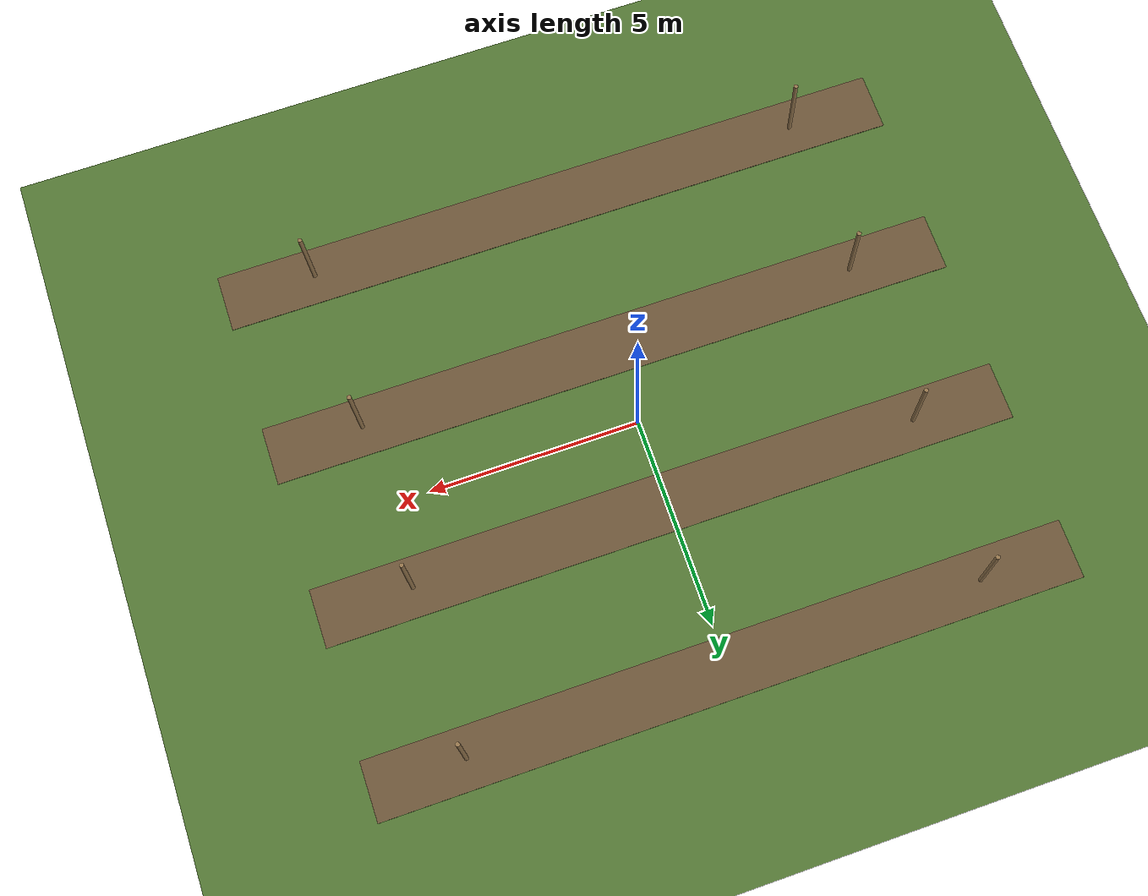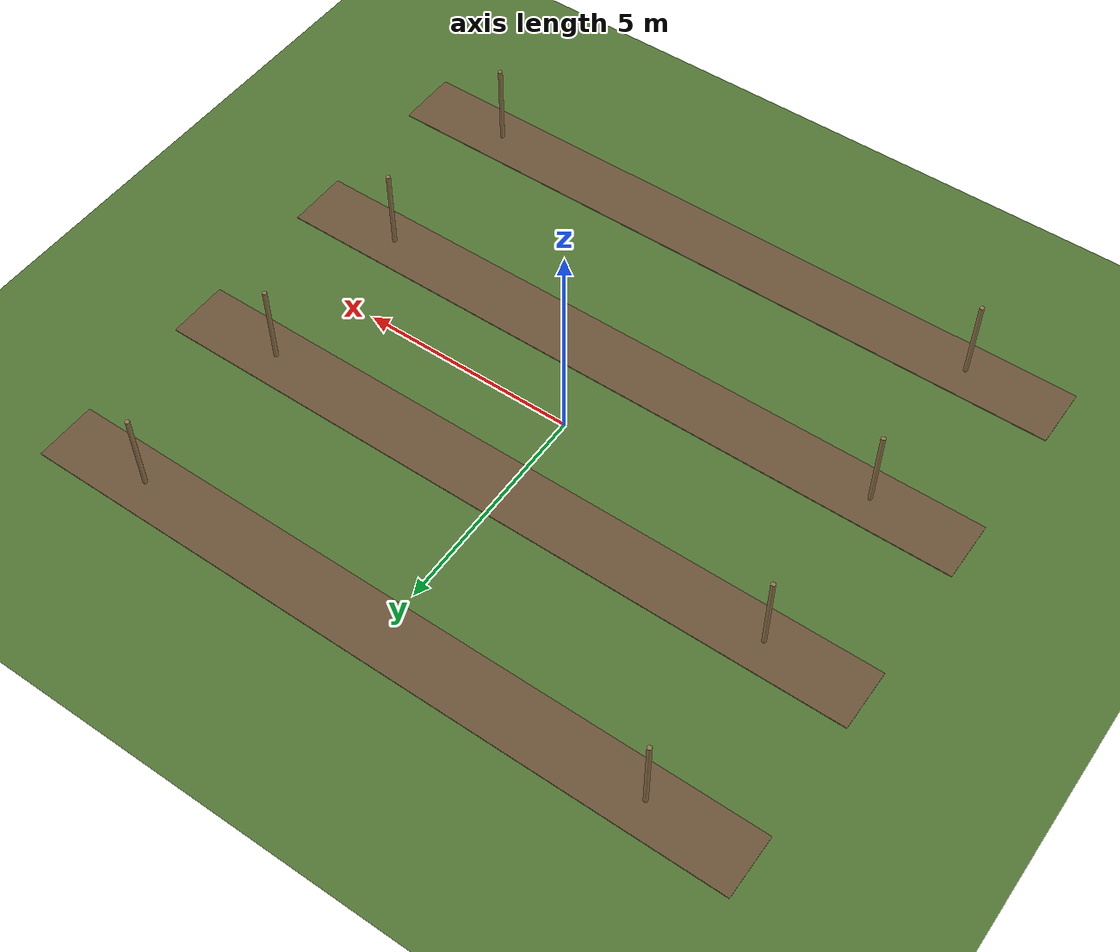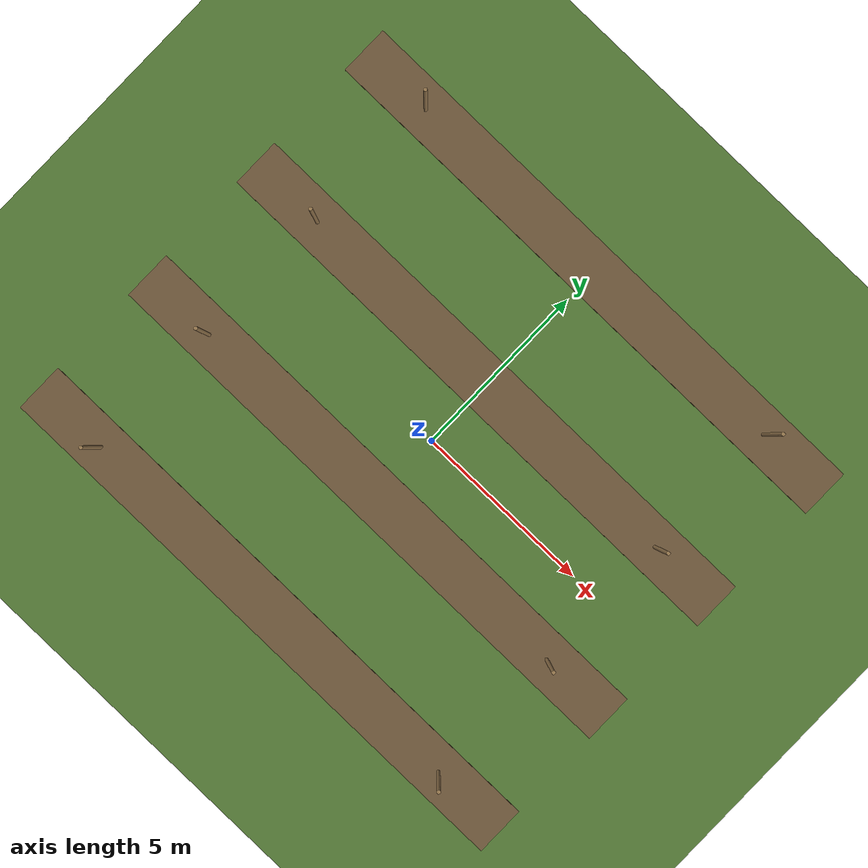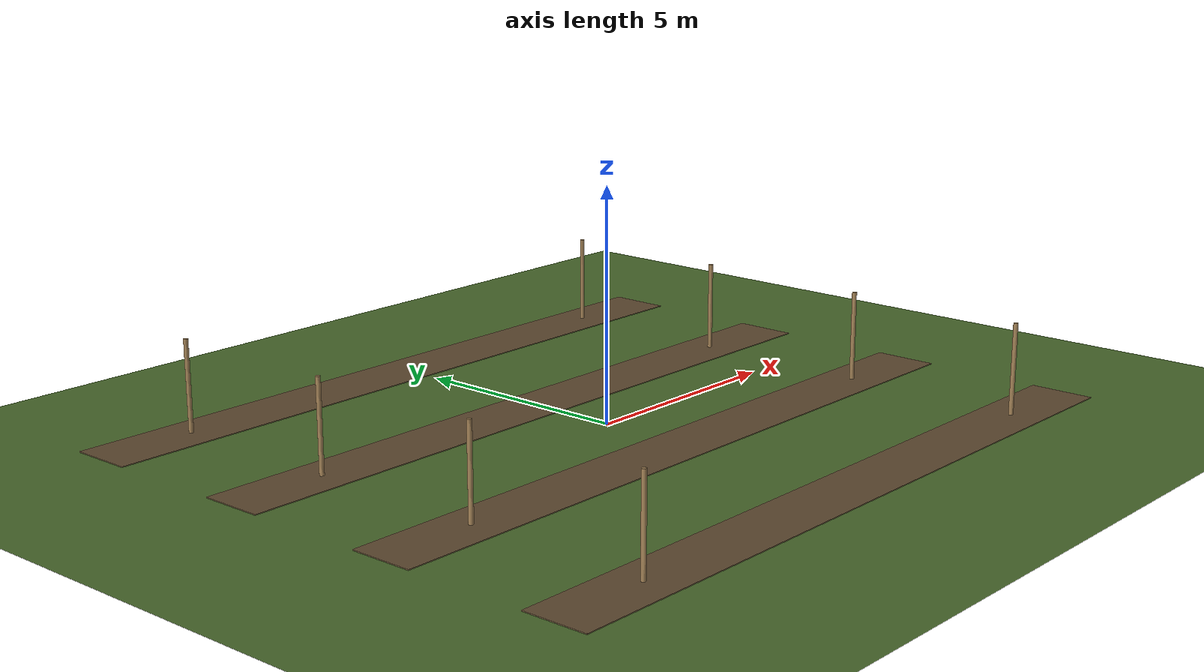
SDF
<sdf version="1.8">
 <world name="bagged_peach_orchard_hd">
  <model name="ground">
   <static>true</static>
   <link name="link">
    <collision name="c">
     <geometry><plane><normal>0 0 1</normal><size>40.0 30.0</size></plane></geometry>
    </collision>
    <visual name="v">
     <geometry><plane><normal>0 0 1</normal><size>40.0 30.0</size></plane></geometry>
     <material>
      <ambient>0.1600 0.2300 0.1000 1</ambient>
      <diffuse>0.3200 0.4600 0.2000 1</diffuse>
      <specular>0.05 0.05 0.05 1</specular>
     </material>
    </visual>
   </link>
  </model>
  <model name="soil_strips">
   <static>true</static>
   <link name="link">
    <visual name="soil_r0_v">
     <pose>0 -6.0000 0.012 0 0 0</pose>
     <geometry><box><size>16.4000 1.4 0.02</size></box></geometry>
     <material>
      <ambient>0.2100 0.1650 0.1100 1</ambient>
      <diffuse>0.4200 0.3300 0.2200 1</diffuse>
      <specular>0.05 0.05 0.05 1</specular>
     </material>
    </visual>
    <visual name="soil_r1_v">
     <pose>0 -2.0000 0.012 0 0 0</pose>
     <geometry><box><size>16.4000 1.4 0.02</size></box></geometry>
     <material>
      <ambient>0.2100 0.1650 0.1100 1</ambient>
      <diffuse>0.4200 0.3300 0.2200 1</diffuse>
      <specular>0.05 0.05 0.05 1</specular>
     </material>
    </visual>
    <visual name="soil_r2_v">
     <pose>0 2.0000 0.012 0 0 0</pose>
     <geometry><box><size>16.4000 1.4 0.02</size></box></geometry>
     <material>
      <ambient>0.2100 0.1650 0.1100 1</ambient>
      <diffuse>0.4200 0.3300 0.2200 1</diffuse>
      <specular>0.05 0.05 0.05 1</specular>
     </material>
    </visual>
    <visual name="soil_r3_v">
     <pose>0 6.0000 0.012 0 0 0</pose>
     <geometry><box><size>16.4000 1.4 0.02</size></box></geometry>
     <material>
      <ambient>0.2100 0.1650 0.1100 1</ambient>
      <diffuse>0.4200 0.3300 0.2200 1</diffuse>
      <specular>0.05 0.05 0.05 1</specular>
     </material>
    </visual>
   </link>
  </model>
  <model name="posts">
   <static>true</static>
   <link name="link">
    <visual name="post0_v">
     <pose>-6.0000 -6.0000 1.0000 0.0000 0.0000 0.0000</pose>
     <geometry><cylinder><radius>0.0500</radius><length>2.0000</length></cylinder></geometry>
     <material>
      <ambient>0.2900 0.2300 0.1500 1</ambient>
      <diffuse>0.5800 0.4600 0.3000 1</diffuse>
      <specular>0.05 0.05 0.05 1</specular>
     </material>
    </visual>
    <collision name="post0_v_c">
     <pose>-6.0000 -6.0000 1.0000 0.0000 0.0000 0.0000</pose>
     <geometry><cylinder><radius>0.0500</radius><length>2.0000</length></cylinder></geometry>
    </collision>
    <visual name="post1_v">
     <pose>-6.0000 -2.0000 1.0000 0.0000 0.0000 0.0000</pose>
     <geometry><cylinder><radius>0.0500</radius><length>2.0000</length></cylinder></geometry>
     <material>
      <ambient>0.2900 0.2300 0.1500 1</ambient>
      <diffuse>0.5800 0.4600 0.3000 1</diffuse>
      <specular>0.05 0.05 0.05 1</specular>
     </material>
    </visual>
    <collision name="post1_v_c">
     <pose>-6.0000 -2.0000 1.0000 0.0000 0.0000 0.0000</pose>
     <geometry><cylinder><radius>0.0500</radius><length>2.0000</length></cylinder></geometry>
    </collision>
    <visual name="post2_v">
     <pose>-6.0000 2.0000 1.0000 0.0000 0.0000 0.0000</pose>
     <geometry><cylinder><radius>0.0500</radius><length>2.0000</length></cylinder></geometry>
     <material>
      <ambient>0.2900 0.2300 0.1500 1</ambient>
      <diffuse>0.5800 0.4600 0.3000 1</diffuse>
      <specular>0.05 0.05 0.05 1</specular>
     </material>
    </visual>
    <collision name="post2_v_c">
     <pose>-6.0000 2.0000 1.0000 0.0000 0.0000 0.0000</pose>
     <geometry><cylinder><radius>0.0500</radius><length>2.0000</length></cylinder></geometry>
    </collision>
    <visual name="post3_v">
     <pose>-6.0000 6.0000 1.0000 0.0000 0.0000 0.0000</pose>
     <geometry><cylinder><radius>0.0500</radius><length>2.0000</length></cylinder></geometry>
     <material>
      <ambient>0.2900 0.2300 0.1500 1</ambient>
      <diffuse>0.5800 0.4600 0.3000 1</diffuse>
      <specular>0.05 0.05 0.05 1</specular>
     </material>
    </visual>
    <collision name="post3_v_c">
     <pose>-6.0000 6.0000 1.0000 0.0000 0.0000 0.0000</pose>
     <geometry><cylinder><radius>0.0500</radius><length>2.0000</length></cylinder></geometry>
    </collision>
    <visual name="post4_v">
     <pose>6.0000 -6.0000 1.0000 0.0000 0.0000 0.0000</pose>
     <geometry><cylinder><radius>0.0500</radius><length>2.0000</length></cylinder></geometry>
     <material>
      <ambient>0.2900 0.2300 0.1500 1</ambient>
      <diffuse>0.5800 0.4600 0.3000 1</diffuse>
      <specular>0.05 0.05 0.05 1</specular>
     </material>
    </visual>
    <collision name="post4_v_c">
     <pose>6.0000 -6.0000 1.0000 0.0000 0.0000 0.0000</pose>
     <geometry><cylinder><radius>0.0500</radius><length>2.0000</length></cylinder></geometry>
    </collision>
    <visual name="post5_v">
     <pose>6.0000 -2.0000 1.0000 0.0000 0.0000 0.0000</pose>
     <geometry><cylinder><radius>0.0500</radius><length>2.0000</length></cylinder></geometry>
     <material>
      <ambient>0.2900 0.2300 0.1500 1</ambient>
      <diffuse>0.5800 0.4600 0.3000 1</diffuse>
      <specular>0.05 0.05 0.05 1</specular>
     </material>
    </visual>
    <collision name="post5_v_c">
     <pose>6.0000 -2.0000 1.0000 0.0000 0.0000 0.0000</pose>
     <geometry><cylinder><radius>0.0500</radius><length>2.0000</length></cylinder></geometry>
    </collision>
    <visual name="post6_v">
     <pose>6.0000 2.0000 1.0000 0.0000 0.0000 0.0000</pose>
     <geometry><cylinder><radius>0.0500</radius><length>2.0000</length></cylinder></geometry>
     <material>
      <ambient>0.2900 0.2300 0.1500 1</ambient>
      <diffuse>0.5800 0.4600 0.3000 1</diffuse>
      <specular>0.05 0.05 0.05 1</specular>
     </material>
    </visual>
    <collision name="post6_v_c">
     <pose>6.0000 2.0000 1.0000 0.0000 0.0000 0.0000</pose>
     <geometry><cylinder><radius>0.0500</radius><length>2.0000</length></cylinder></geometry>
    </collision>
    <visual name="post7_v">
     <pose>6.0000 6.0000 1.0000 0.0000 0.0000 0.0000</pose>
     <geometry><cylinder><radius>0.0500</radius><length>2.0000</length></cylinder></geometry>
     <material>
      <ambient>0.2900 0.2300 0.1500 1</ambient>
      <diffuse>0.5800 0.4600 0.3000 1</diffuse>
      <specular>0.05 0.05 0.05 1</specular>
     </material>
    </visual>
    <collision name="post7_v_c">
     <pose>6.0000 6.0000 1.0000 0.0000 0.0000 0.0000</pose>
     <geometry><cylinder><radius>0.0500</radius><length>2.0000</length></cylinder></geometry>
    </collision>
   </link>
  </model>
 </world>
</sdf>
